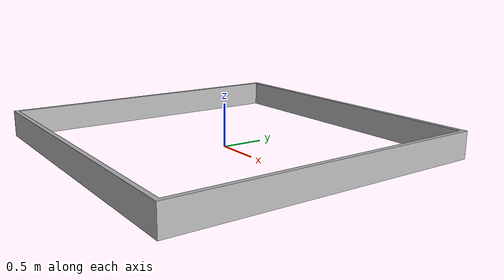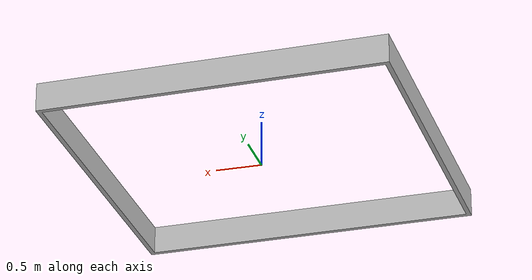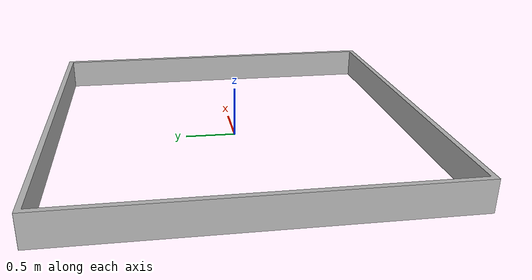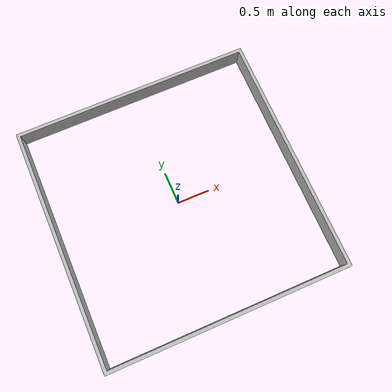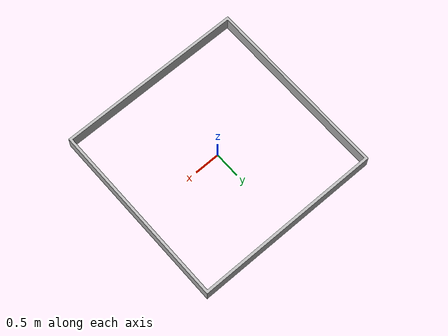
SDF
<?xml version="1.0" ?>
<sdf version="1.7">
  <model name="vex_field">

    <!-- model position in the world -->
    <pose>0 0 0.30883 1.5708 0 0</pose>

    <!-- locked postiton? -->
    <static>true</static>

    <link name="link">
      <!--pose of link relative to model-->
      <pose>0 0 0 0 0 0</pose>

      <!-- visual model-->
      <visual name="visual">
        <geometry>
          <mesh>
            <uri>model://vex_field/meshes/vex_visual_high_res.obj</uri>
          </mesh>
        </geometry>
      </visual>

      <!-- collision geometry-->
      <collision name="collision">
        <geometry>
          <mesh>
            <uri>model://vex_field/meshes/vex_visual_high_res.obj</uri>
          </mesh>
        </geometry>
      </collision>

      <inertial>
        <mass>1</mass>
        <inertia>
          <ixx>0.0002</ixx>
          <iyy>0.0002</iyy>
          <izz>0.0002</izz>
        </inertia>
      </inertial>

    </link>
  </model>
</sdf>
